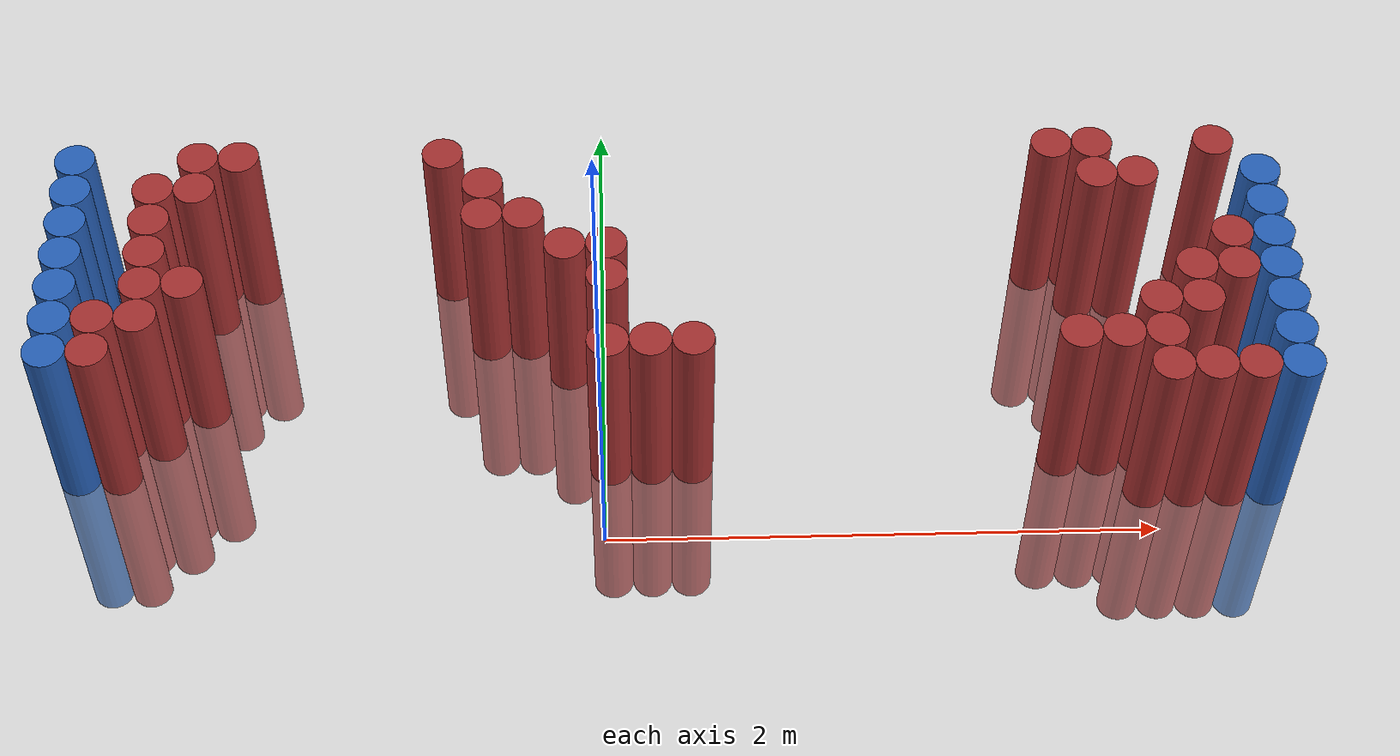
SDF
<sdf version="1.6">
 <world name="default">
  <model name="ground_plane">
   <static>1</static>
   <link name="link">
    <collision name="collision">
     <geometry><plane><normal>0 0 1</normal><size>100 100</size></plane></geometry>
     <surface><friction><ode><mu>100</mu><mu2>50</mu2></ode></friction></surface>
    </collision>
    <visual name="visual">
     <cast_shadows>0</cast_shadows>
     <geometry><plane><normal>0 0 1</normal><size>100 100</size></plane></geometry>
     <material>
      <script><uri>file://media/materials/scripts/gazebo.material</uri><name>Gazebo/Grey</name></script>
     </material>
    </visual>
   </link>
  </model>
  <model name="unit_cylinder_97">
   <static>1</static>
   <pose>-1.925000 0.325000 0.000000 0.000000 0.000000 0.000000</pose>
   <link name="link">
    <inertial>
     <mass>1</mass>
     <inertia><ixx>0.145833</ixx><ixy>0</ixy><ixz>0</ixz><iyy>0.145833</iyy><iyz>0</iyz><izz>0.125</izz></inertia>
    </inertial>
    <collision name="collision">
     <geometry><cylinder><radius>0.075000</radius><length>1.5</length></cylinder></geometry>
    </collision>
    <visual name="visual">
     <geometry><cylinder><radius>0.075000</radius><length>1.5</length></cylinder></geometry>
     <material>
      <ambient>0.152000 0.379000 0.720000 1</ambient>
      <diffuse>0.152000 0.379000 0.720000 1</diffuse>
     </material>
     <material>
      <script><name>Gazebo/Grey</name><uri>file://media/materials/scripts/gazebo.material</uri></script>
     </material>
    </visual>
   </link>
  </model>
  <model name="unit_cylinder_98">
   <static>1</static>
   <pose>-1.925000 0.475000 0.000000 0.000000 0.000000 0.000000</pose>
   <link name="link">
    <inertial>
     <mass>1</mass>
     <inertia><ixx>0.145833</ixx><ixy>0</ixy><ixz>0</ixz><iyy>0.145833</iyy><iyz>0</iyz><izz>0.125</izz></inertia>
    </inertial>
    <collision name="collision">
     <geometry><cylinder><radius>0.075000</radius><length>1.5</length></cylinder></geometry>
    </collision>
    <visual name="visual">
     <geometry><cylinder><radius>0.075000</radius><length>1.5</length></cylinder></geometry>
     <material>
      <ambient>0.152000 0.379000 0.720000 1</ambient>
      <diffuse>0.152000 0.379000 0.720000 1</diffuse>
     </material>
     <material>
      <script><name>Gazebo/Grey</name><uri>file://media/materials/scripts/gazebo.material</uri></script>
     </material>
    </visual>
   </link>
  </model>
  <model name="unit_cylinder_99">
   <static>1</static>
   <pose>-1.925000 0.625000 0.000000 0.000000 0.000000 0.000000</pose>
   <link name="link">
    <inertial>
     <mass>1</mass>
     <inertia><ixx>0.145833</ixx><ixy>0</ixy><ixz>0</ixz><iyy>0.145833</iyy><iyz>0</iyz><izz>0.125</izz></inertia>
    </inertial>
    <collision name="collision">
     <geometry><cylinder><radius>0.075000</radius><length>1.5</length></cylinder></geometry>
    </collision>
    <visual name="visual">
     <geometry><cylinder><radius>0.075000</radius><length>1.5</length></cylinder></geometry>
     <material>
      <ambient>0.152000 0.379000 0.720000 1</ambient>
      <diffuse>0.152000 0.379000 0.720000 1</diffuse>
     </material>
     <material>
      <script><name>Gazebo/Grey</name><uri>file://media/materials/scripts/gazebo.material</uri></script>
     </material>
    </visual>
   </link>
  </model>
  <model name="unit_cylinder_100">
   <static>1</static>
   <pose>-1.925000 0.775000 0.000000 0.000000 0.000000 0.000000</pose>
   <link name="link">
    <inertial>
     <mass>1</mass>
     <inertia><ixx>0.145833</ixx><ixy>0</ixy><ixz>0</ixz><iyy>0.145833</iyy><iyz>0</iyz><izz>0.125</izz></inertia>
    </inertial>
    <collision name="collision">
     <geometry><cylinder><radius>0.075000</radius><length>1.5</length></cylinder></geometry>
    </collision>
    <visual name="visual">
     <geometry><cylinder><radius>0.075000</radius><length>1.5</length></cylinder></geometry>
     <material>
      <ambient>0.152000 0.379000 0.720000 1</ambient>
      <diffuse>0.152000 0.379000 0.720000 1</diffuse>
     </material>
     <material>
      <script><name>Gazebo/Grey</name><uri>file://media/materials/scripts/gazebo.material</uri></script>
     </material>
    </visual>
   </link>
  </model>
  <model name="unit_cylinder_101">
   <static>1</static>
   <pose>-1.925000 0.925000 0.000000 0.000000 0.000000 0.000000</pose>
   <link name="link">
    <inertial>
     <mass>1</mass>
     <inertia><ixx>0.145833</ixx><ixy>0</ixy><ixz>0</ixz><iyy>0.145833</iyy><iyz>0</iyz><izz>0.125</izz></inertia>
    </inertial>
    <collision name="collision">
     <geometry><cylinder><radius>0.075000</radius><length>1.5</length></cylinder></geometry>
    </collision>
    <visual name="visual">
     <geometry><cylinder><radius>0.075000</radius><length>1.5</length></cylinder></geometry>
     <material>
      <ambient>0.152000 0.379000 0.720000 1</ambient>
      <diffuse>0.152000 0.379000 0.720000 1</diffuse>
     </material>
     <material>
      <script><name>Gazebo/Grey</name><uri>file://media/materials/scripts/gazebo.material</uri></script>
     </material>
    </visual>
   </link>
  </model>
  <model name="unit_cylinder_102">
   <static>1</static>
   <pose>-1.925000 1.075000 0.000000 0.000000 0.000000 0.000000</pose>
   <link name="link">
    <inertial>
     <mass>1</mass>
     <inertia><ixx>0.145833</ixx><ixy>0</ixy><ixz>0</ixz><iyy>0.145833</iyy><iyz>0</iyz><izz>0.125</izz></inertia>
    </inertial>
    <collision name="collision">
     <geometry><cylinder><radius>0.075000</radius><length>1.5</length></cylinder></geometry>
    </collision>
    <visual name="visual">
     <geometry><cylinder><radius>0.075000</radius><length>1.5</length></cylinder></geometry>
     <material>
      <ambient>0.152000 0.379000 0.720000 1</ambient>
      <diffuse>0.152000 0.379000 0.720000 1</diffuse>
     </material>
     <material>
      <script><name>Gazebo/Grey</name><uri>file://media/materials/scripts/gazebo.material</uri></script>
     </material>
    </visual>
   </link>
  </model>
  <model name="unit_cylinder_103">
   <static>1</static>
   <pose>-1.925000 1.225000 0.000000 0.000000 0.000000 0.000000</pose>
   <link name="link">
    <inertial>
     <mass>1</mass>
     <inertia><ixx>0.145833</ixx><ixy>0</ixy><ixz>0</ixz><iyy>0.145833</iyy><iyz>0</iyz><izz>0.125</izz></inertia>
    </inertial>
    <collision name="collision">
     <geometry><cylinder><radius>0.075000</radius><length>1.5</length></cylinder></geometry>
    </collision>
    <visual name="visual">
     <geometry><cylinder><radius>0.075000</radius><length>1.5</length></cylinder></geometry>
     <material>
      <ambient>0.152000 0.379000 0.720000 1</ambient>
      <diffuse>0.152000 0.379000 0.720000 1</diffuse>
     </material>
     <material>
      <script><name>Gazebo/Grey</name><uri>file://media/materials/scripts/gazebo.material</uri></script>
     </material>
    </visual>
   </link>
  </model>
  <model name="unit_cylinder_126">
   <static>1</static>
   <pose>-1.775000 0.325000 0.000000 0.000000 0.000000 0.000000</pose>
   <link name="link">
    <inertial>
     <mass>1</mass>
     <inertia><ixx>0.145833</ixx><ixy>0</ixy><ixz>0</ixz><iyy>0.145833</iyy><iyz>0</iyz><izz>0.125</izz></inertia>
    </inertial>
    <collision name="collision">
     <geometry><cylinder><radius>0.075000</radius><length>1.5</length></cylinder></geometry>
    </collision>
    <visual name="visual">
     <geometry><cylinder><radius>0.075000</radius><length>1.5</length></cylinder></geometry>
     <material>
      <ambient>0.648000 0.192000 0.192000 1</ambient>
      <diffuse>0.648000 0.192000 0.192000 1</diffuse>
     </material>
     <material>
      <script><name>Gazebo/Grey</name><uri>file://media/materials/scripts/gazebo.material</uri></script>
     </material>
    </visual>
   </link>
  </model>
  <model name="unit_cylinder_127">
   <static>1</static>
   <pose>-1.775000 0.475000 0.000000 0.000000 0.000000 0.000000</pose>
   <link name="link">
    <inertial>
     <mass>1</mass>
     <inertia><ixx>0.145833</ixx><ixy>0</ixy><ixz>0</ixz><iyy>0.145833</iyy><iyz>0</iyz><izz>0.125</izz></inertia>
    </inertial>
    <collision name="collision">
     <geometry><cylinder><radius>0.075000</radius><length>1.5</length></cylinder></geometry>
    </collision>
    <visual name="visual">
     <geometry><cylinder><radius>0.075000</radius><length>1.5</length></cylinder></geometry>
     <material>
      <ambient>0.648000 0.192000 0.192000 1</ambient>
      <diffuse>0.648000 0.192000 0.192000 1</diffuse>
     </material>
     <material>
      <script><name>Gazebo/Grey</name><uri>file://media/materials/scripts/gazebo.material</uri></script>
     </material>
    </visual>
   </link>
  </model>
  <model name="unit_cylinder_138">
   <static>1</static>
   <pose>-1.625000 0.475000 0.000000 0.000000 0.000000 0.000000</pose>
   <link name="link">
    <inertial>
     <mass>1</mass>
     <inertia><ixx>0.145833</ixx><ixy>0</ixy><ixz>0</ixz><iyy>0.145833</iyy><iyz>0</iyz><izz>0.125</izz></inertia>
    </inertial>
    <collision name="collision">
     <geometry><cylinder><radius>0.075000</radius><length>1.5</length></cylinder></geometry>
    </collision>
    <visual name="visual">
     <geometry><cylinder><radius>0.075000</radius><length>1.5</length></cylinder></geometry>
     <material>
      <ambient>0.648000 0.192000 0.192000 1</ambient>
      <diffuse>0.648000 0.192000 0.192000 1</diffuse>
     </material>
     <material>
      <script><name>Gazebo/Grey</name><uri>file://media/materials/scripts/gazebo.material</uri></script>
     </material>
    </visual>
   </link>
  </model>
  <model name="unit_cylinder_139">
   <static>1</static>
   <pose>-1.625000 0.625000 0.000000 0.000000 0.000000 0.000000</pose>
   <link name="link">
    <inertial>
     <mass>1</mass>
     <inertia><ixx>0.145833</ixx><ixy>0</ixy><ixz>0</ixz><iyy>0.145833</iyy><iyz>0</iyz><izz>0.125</izz></inertia>
    </inertial>
    <collision name="collision">
     <geometry><cylinder><radius>0.075000</radius><length>1.5</length></cylinder></geometry>
    </collision>
    <visual name="visual">
     <geometry><cylinder><radius>0.075000</radius><length>1.5</length></cylinder></geometry>
     <material>
      <ambient>0.648000 0.192000 0.192000 1</ambient>
      <diffuse>0.648000 0.192000 0.192000 1</diffuse>
     </material>
     <material>
      <script><name>Gazebo/Grey</name><uri>file://media/materials/scripts/gazebo.material</uri></script>
     </material>
    </visual>
   </link>
  </model>
  <model name="unit_cylinder_140">
   <static>1</static>
   <pose>-1.625000 0.775000 0.000000 0.000000 0.000000 0.000000</pose>
   <link name="link">
    <inertial>
     <mass>1</mass>
     <inertia><ixx>0.145833</ixx><ixy>0</ixy><ixz>0</ixz><iyy>0.145833</iyy><iyz>0</iyz><izz>0.125</izz></inertia>
    </inertial>
    <collision name="collision">
     <geometry><cylinder><radius>0.075000</radius><length>1.5</length></cylinder></geometry>
    </collision>
    <visual name="visual">
     <geometry><cylinder><radius>0.075000</radius><length>1.5</length></cylinder></geometry>
     <material>
      <ambient>0.648000 0.192000 0.192000 1</ambient>
      <diffuse>0.648000 0.192000 0.192000 1</diffuse>
     </material>
     <material>
      <script><name>Gazebo/Grey</name><uri>file://media/materials/scripts/gazebo.material</uri></script>
     </material>
    </visual>
   </link>
  </model>
  <model name="unit_cylinder_141">
   <static>1</static>
   <pose>-1.625000 0.925000 0.000000 0.000000 0.000000 0.000000</pose>
   <link name="link">
    <inertial>
     <mass>1</mass>
     <inertia><ixx>0.145833</ixx><ixy>0</ixy><ixz>0</ixz><iyy>0.145833</iyy><iyz>0</iyz><izz>0.125</izz></inertia>
    </inertial>
    <collision name="collision">
     <geometry><cylinder><radius>0.075000</radius><length>1.5</length></cylinder></geometry>
    </collision>
    <visual name="visual">
     <geometry><cylinder><radius>0.075000</radius><length>1.5</length></cylinder></geometry>
     <material>
      <ambient>0.648000 0.192000 0.192000 1</ambient>
      <diffuse>0.648000 0.192000 0.192000 1</diffuse>
     </material>
     <material>
      <script><name>Gazebo/Grey</name><uri>file://media/materials/scripts/gazebo.material</uri></script>
     </material>
    </visual>
   </link>
  </model>
  <model name="unit_cylinder_142">
   <static>1</static>
   <pose>-1.625000 1.075000 0.000000 0.000000 0.000000 0.000000</pose>
   <link name="link">
    <inertial>
     <mass>1</mass>
     <inertia><ixx>0.145833</ixx><ixy>0</ixy><ixz>0</ixz><iyy>0.145833</iyy><iyz>0</iyz><izz>0.125</izz></inertia>
    </inertial>
    <collision name="collision">
     <geometry><cylinder><radius>0.075000</radius><length>1.5</length></cylinder></geometry>
    </collision>
    <visual name="visual">
     <geometry><cylinder><radius>0.075000</radius><length>1.5</length></cylinder></geometry>
     <material>
      <ambient>0.648000 0.192000 0.192000 1</ambient>
      <diffuse>0.648000 0.192000 0.192000 1</diffuse>
     </material>
     <material>
      <script><name>Gazebo/Grey</name><uri>file://media/materials/scripts/gazebo.material</uri></script>
     </material>
    </visual>
   </link>
  </model>
  <model name="unit_cylinder_147">
   <static>1</static>
   <pose>-1.475000 0.625000 0.000000 0.000000 0.000000 0.000000</pose>
   <link name="link">
    <inertial>
     <mass>1</mass>
     <inertia><ixx>0.145833</ixx><ixy>0</ixy><ixz>0</ixz><iyy>0.145833</iyy><iyz>0</iyz><izz>0.125</izz></inertia>
    </inertial>
    <collision name="collision">
     <geometry><cylinder><radius>0.075000</radius><length>1.5</length></cylinder></geometry>
    </collision>
    <visual name="visual">
     <geometry><cylinder><radius>0.075000</radius><length>1.5</length></cylinder></geometry>
     <material>
      <ambient>0.648000 0.192000 0.192000 1</ambient>
      <diffuse>0.648000 0.192000 0.192000 1</diffuse>
     </material>
     <material>
      <script><name>Gazebo/Grey</name><uri>file://media/materials/scripts/gazebo.material</uri></script>
     </material>
    </visual>
   </link>
  </model>
  <model name="unit_cylinder_148">
   <static>1</static>
   <pose>-1.475000 1.075000 0.000000 0.000000 0.000000 0.000000</pose>
   <link name="link">
    <inertial>
     <mass>1</mass>
     <inertia><ixx>0.145833</ixx><ixy>0</ixy><ixz>0</ixz><iyy>0.145833</iyy><iyz>0</iyz><izz>0.125</izz></inertia>
    </inertial>
    <collision name="collision">
     <geometry><cylinder><radius>0.075000</radius><length>1.5</length></cylinder></geometry>
    </collision>
    <visual name="visual">
     <geometry><cylinder><radius>0.075000</radius><length>1.5</length></cylinder></geometry>
     <material>
      <ambient>0.648000 0.192000 0.192000 1</ambient>
      <diffuse>0.648000 0.192000 0.192000 1</diffuse>
     </material>
     <material>
      <script><name>Gazebo/Grey</name><uri>file://media/materials/scripts/gazebo.material</uri></script>
     </material>
    </visual>
   </link>
  </model>
  <model name="unit_cylinder_149">
   <static>1</static>
   <pose>-1.475000 1.225000 0.000000 0.000000 0.000000 0.000000</pose>
   <link name="link">
    <inertial>
     <mass>1</mass>
     <inertia><ixx>0.145833</ixx><ixy>0</ixy><ixz>0</ixz><iyy>0.145833</iyy><iyz>0</iyz><izz>0.125</izz></inertia>
    </inertial>
    <collision name="collision">
     <geometry><cylinder><radius>0.075000</radius><length>1.5</length></cylinder></geometry>
    </collision>
    <visual name="visual">
     <geometry><cylinder><radius>0.075000</radius><length>1.5</length></cylinder></geometry>
     <material>
      <ambient>0.648000 0.192000 0.192000 1</ambient>
      <diffuse>0.648000 0.192000 0.192000 1</diffuse>
     </material>
     <material>
      <script><name>Gazebo/Grey</name><uri>file://media/materials/scripts/gazebo.material</uri></script>
     </material>
    </visual>
   </link>
  </model>
  <model name="unit_cylinder_153">
   <static>1</static>
   <pose>-1.325000 1.225000 0.000000 0.000000 0.000000 0.000000</pose>
   <link name="link">
    <inertial>
     <mass>1</mass>
     <inertia><ixx>0.145833</ixx><ixy>0</ixy><ixz>0</ixz><iyy>0.145833</iyy><iyz>0</iyz><izz>0.125</izz></inertia>
    </inertial>
    <collision name="collision">
     <geometry><cylinder><radius>0.075000</radius><length>1.5</length></cylinder></geometry>
    </collision>
    <visual name="visual">
     <geometry><cylinder><radius>0.075000</radius><length>1.5</length></cylinder></geometry>
     <material>
      <ambient>0.648000 0.192000 0.192000 1</ambient>
      <diffuse>0.648000 0.192000 0.192000 1</diffuse>
     </material>
     <material>
      <script><name>Gazebo/Grey</name><uri>file://media/materials/scripts/gazebo.material</uri></script>
     </material>
    </visual>
   </link>
  </model>
  <model name="unit_cylinder_178">
   <static>1</static>
   <pose>-0.575000 1.225000 0.000000 0.000000 0.000000 0.000000</pose>
   <link name="link">
    <inertial>
     <mass>1</mass>
     <inertia><ixx>0.145833</ixx><ixy>0</ixy><ixz>0</ixz><iyy>0.145833</iyy><iyz>0</iyz><izz>0.125</izz></inertia>
    </inertial>
    <collision name="collision">
     <geometry><cylinder><radius>0.075000</radius><length>1.5</length></cylinder></geometry>
    </collision>
    <visual name="visual">
     <geometry><cylinder><radius>0.075000</radius><length>1.5</length></cylinder></geometry>
     <material>
      <ambient>0.648000 0.192000 0.192000 1</ambient>
      <diffuse>0.648000 0.192000 0.192000 1</diffuse>
     </material>
     <material>
      <script><name>Gazebo/Grey</name><uri>file://media/materials/scripts/gazebo.material</uri></script>
     </material>
    </visual>
   </link>
  </model>
  <model name="unit_cylinder_187">
   <static>1</static>
   <pose>-0.425000 0.925000 0.000000 0.000000 0.000000 0.000000</pose>
   <link name="link">
    <inertial>
     <mass>1</mass>
     <inertia><ixx>0.145833</ixx><ixy>0</ixy><ixz>0</ixz><iyy>0.145833</iyy><iyz>0</iyz><izz>0.125</izz></inertia>
    </inertial>
    <collision name="collision">
     <geometry><cylinder><radius>0.075000</radius><length>1.5</length></cylinder></geometry>
    </collision>
    <visual name="visual">
     <geometry><cylinder><radius>0.075000</radius><length>1.5</length></cylinder></geometry>
     <material>
      <ambient>0.648000 0.192000 0.192000 1</ambient>
      <diffuse>0.648000 0.192000 0.192000 1</diffuse>
     </material>
     <material>
      <script><name>Gazebo/Grey</name><uri>file://media/materials/scripts/gazebo.material</uri></script>
     </material>
    </visual>
   </link>
  </model>
  <model name="unit_cylinder_188">
   <static>1</static>
   <pose>-0.425000 1.075000 0.000000 0.000000 0.000000 0.000000</pose>
   <link name="link">
    <inertial>
     <mass>1</mass>
     <inertia><ixx>0.145833</ixx><ixy>0</ixy><ixz>0</ixz><iyy>0.145833</iyy><iyz>0</iyz><izz>0.125</izz></inertia>
    </inertial>
    <collision name="collision">
     <geometry><cylinder><radius>0.075000</radius><length>1.5</length></cylinder></geometry>
    </collision>
    <visual name="visual">
     <geometry><cylinder><radius>0.075000</radius><length>1.5</length></cylinder></geometry>
     <material>
      <ambient>0.648000 0.192000 0.192000 1</ambient>
      <diffuse>0.648000 0.192000 0.192000 1</diffuse>
     </material>
     <material>
      <script><name>Gazebo/Grey</name><uri>file://media/materials/scripts/gazebo.material</uri></script>
     </material>
    </visual>
   </link>
  </model>
  <model name="unit_cylinder_198">
   <static>1</static>
   <pose>-0.275000 0.925000 0.000000 0.000000 0.000000 0.000000</pose>
   <link name="link">
    <inertial>
     <mass>1</mass>
     <inertia><ixx>0.145833</ixx><ixy>0</ixy><ixz>0</ixz><iyy>0.145833</iyy><iyz>0</iyz><izz>0.125</izz></inertia>
    </inertial>
    <collision name="collision">
     <geometry><cylinder><radius>0.075000</radius><length>1.5</length></cylinder></geometry>
    </collision>
    <visual name="visual">
     <geometry><cylinder><radius>0.075000</radius><length>1.5</length></cylinder></geometry>
     <material>
      <ambient>0.648000 0.192000 0.192000 1</ambient>
      <diffuse>0.648000 0.192000 0.192000 1</diffuse>
     </material>
     <material>
      <script><name>Gazebo/Grey</name><uri>file://media/materials/scripts/gazebo.material</uri></script>
     </material>
    </visual>
   </link>
  </model>
  <model name="unit_cylinder_203">
   <static>1</static>
   <pose>-0.125000 0.775000 0.000000 0.000000 0.000000 0.000000</pose>
   <link name="link">
    <inertial>
     <mass>1</mass>
     <inertia><ixx>0.145833</ixx><ixy>0</ixy><ixz>0</ixz><iyy>0.145833</iyy><iyz>0</iyz><izz>0.125</izz></inertia>
    </inertial>
    <collision name="collision">
     <geometry><cylinder><radius>0.075000</radius><length>1.5</length></cylinder></geometry>
    </collision>
    <visual name="visual">
     <geometry><cylinder><radius>0.075000</radius><length>1.5</length></cylinder></geometry>
     <material>
      <ambient>0.648000 0.192000 0.192000 1</ambient>
      <diffuse>0.648000 0.192000 0.192000 1</diffuse>
     </material>
     <material>
      <script><name>Gazebo/Grey</name><uri>file://media/materials/scripts/gazebo.material</uri></script>
     </material>
    </visual>
   </link>
  </model>
  <model name="unit_cylinder_205">
   <static>1</static>
   <pose>0.025000 0.325000 0.000000 0.000000 0.000000 0.000000</pose>
   <link name="link">
    <inertial>
     <mass>1</mass>
     <inertia><ixx>0.145833</ixx><ixy>0</ixy><ixz>0</ixz><iyy>0.145833</iyy><iyz>0</iyz><izz>0.125</izz></inertia>
    </inertial>
    <collision name="collision">
     <geometry><cylinder><radius>0.075000</radius><length>1.5</length></cylinder></geometry>
    </collision>
    <visual name="visual">
     <geometry><cylinder><radius>0.075000</radius><length>1.5</length></cylinder></geometry>
     <material>
      <ambient>0.648000 0.192000 0.192000 1</ambient>
      <diffuse>0.648000 0.192000 0.192000 1</diffuse>
     </material>
     <material>
      <script><name>Gazebo/Grey</name><uri>file://media/materials/scripts/gazebo.material</uri></script>
     </material>
    </visual>
   </link>
  </model>
  <model name="unit_cylinder_206">
   <static>1</static>
   <pose>0.025000 0.625000 0.000000 0.000000 0.000000 0.000000</pose>
   <link name="link">
    <inertial>
     <mass>1</mass>
     <inertia><ixx>0.145833</ixx><ixy>0</ixy><ixz>0</ixz><iyy>0.145833</iyy><iyz>0</iyz><izz>0.125</izz></inertia>
    </inertial>
    <collision name="collision">
     <geometry><cylinder><radius>0.075000</radius><length>1.5</length></cylinder></geometry>
    </collision>
    <visual name="visual">
     <geometry><cylinder><radius>0.075000</radius><length>1.5</length></cylinder></geometry>
     <material>
      <ambient>0.648000 0.192000 0.192000 1</ambient>
      <diffuse>0.648000 0.192000 0.192000 1</diffuse>
     </material>
     <material>
      <script><name>Gazebo/Grey</name><uri>file://media/materials/scripts/gazebo.material</uri></script>
     </material>
    </visual>
   </link>
  </model>
  <model name="unit_cylinder_207">
   <static>1</static>
   <pose>0.025000 0.775000 0.000000 0.000000 0.000000 0.000000</pose>
   <link name="link">
    <inertial>
     <mass>1</mass>
     <inertia><ixx>0.145833</ixx><ixy>0</ixy><ixz>0</ixz><iyy>0.145833</iyy><iyz>0</iyz><izz>0.125</izz></inertia>
    </inertial>
    <collision name="collision">
     <geometry><cylinder><radius>0.075000</radius><length>1.5</length></cylinder></geometry>
    </collision>
    <visual name="visual">
     <geometry><cylinder><radius>0.075000</radius><length>1.5</length></cylinder></geometry>
     <material>
      <ambient>0.648000 0.192000 0.192000 1</ambient>
      <diffuse>0.648000 0.192000 0.192000 1</diffuse>
     </material>
     <material>
      <script><name>Gazebo/Grey</name><uri>file://media/materials/scripts/gazebo.material</uri></script>
     </material>
    </visual>
   </link>
  </model>
  <model name="unit_cylinder_211">
   <static>1</static>
   <pose>0.175000 0.325000 0.000000 0.000000 0.000000 0.000000</pose>
   <link name="link">
    <inertial>
     <mass>1</mass>
     <inertia><ixx>0.145833</ixx><ixy>0</ixy><ixz>0</ixz><iyy>0.145833</iyy><iyz>0</iyz><izz>0.125</izz></inertia>
    </inertial>
    <collision name="collision">
     <geometry><cylinder><radius>0.075000</radius><length>1.5</length></cylinder></geometry>
    </collision>
    <visual name="visual">
     <geometry><cylinder><radius>0.075000</radius><length>1.5</length></cylinder></geometry>
     <material>
      <ambient>0.648000 0.192000 0.192000 1</ambient>
      <diffuse>0.648000 0.192000 0.192000 1</diffuse>
     </material>
     <material>
      <script><name>Gazebo/Grey</name><uri>file://media/materials/scripts/gazebo.material</uri></script>
     </material>
    </visual>
   </link>
  </model>
  <model name="unit_cylinder_215">
   <static>1</static>
   <pose>0.325000 0.325000 0.000000 0.000000 0.000000 0.000000</pose>
   <link name="link">
    <inertial>
     <mass>1</mass>
     <inertia><ixx>0.145833</ixx><ixy>0</ixy><ixz>0</ixz><iyy>0.145833</iyy><iyz>0</iyz><izz>0.125</izz></inertia>
    </inertial>
    <collision name="collision">
     <geometry><cylinder><radius>0.075000</radius><length>1.5</length></cylinder></geometry>
    </collision>
    <visual name="visual">
     <geometry><cylinder><radius>0.075000</radius><length>1.5</length></cylinder></geometry>
     <material>
      <ambient>0.648000 0.192000 0.192000 1</ambient>
      <diffuse>0.648000 0.192000 0.192000 1</diffuse>
     </material>
     <material>
      <script><name>Gazebo/Grey</name><uri>file://media/materials/scripts/gazebo.material</uri></script>
     </material>
    </visual>
   </link>
  </model>
  <model name="unit_cylinder_225">
   <static>1</static>
   <pose>1.675000 0.325000 0.000000 0.000000 0.000000 0.000000</pose>
   <link name="link">
    <inertial>
     <mass>1</mass>
     <inertia><ixx>0.145833</ixx><ixy>0</ixy><ixz>0</ixz><iyy>0.145833</iyy><iyz>0</iyz><izz>0.125</izz></inertia>
    </inertial>
    <collision name="collision">
     <geometry><cylinder><radius>0.075000</radius><length>1.5</length></cylinder></geometry>
    </collision>
    <visual name="visual">
     <geometry><cylinder><radius>0.075000</radius><length>1.5</length></cylinder></geometry>
     <material>
      <ambient>0.648000 0.192000 0.192000 1</ambient>
      <diffuse>0.648000 0.192000 0.192000 1</diffuse>
     </material>
     <material>
      <script><name>Gazebo/Grey</name><uri>file://media/materials/scripts/gazebo.material</uri></script>
     </material>
    </visual>
   </link>
  </model>
  <model name="unit_cylinder_226">
   <static>1</static>
   <pose>1.675000 1.225000 0.000000 0.000000 0.000000 0.000000</pose>
   <link name="link">
    <inertial>
     <mass>1</mass>
     <inertia><ixx>0.145833</ixx><ixy>0</ixy><ixz>0</ixz><iyy>0.145833</iyy><iyz>0</iyz><izz>0.125</izz></inertia>
    </inertial>
    <collision name="collision">
     <geometry><cylinder><radius>0.075000</radius><length>1.5</length></cylinder></geometry>
    </collision>
    <visual name="visual">
     <geometry><cylinder><radius>0.075000</radius><length>1.5</length></cylinder></geometry>
     <material>
      <ambient>0.648000 0.192000 0.192000 1</ambient>
      <diffuse>0.648000 0.192000 0.192000 1</diffuse>
     </material>
     <material>
      <script><name>Gazebo/Grey</name><uri>file://media/materials/scripts/gazebo.material</uri></script>
     </material>
    </visual>
   </link>
  </model>
  <model name="unit_cylinder_232">
   <static>1</static>
   <pose>1.825000 0.325000 0.000000 0.000000 0.000000 0.000000</pose>
   <link name="link">
    <inertial>
     <mass>1</mass>
     <inertia><ixx>0.145833</ixx><ixy>0</ixy><ixz>0</ixz><iyy>0.145833</iyy><iyz>0</iyz><izz>0.125</izz></inertia>
    </inertial>
    <collision name="collision">
     <geometry><cylinder><radius>0.075000</radius><length>1.5</length></cylinder></geometry>
    </collision>
    <visual name="visual">
     <geometry><cylinder><radius>0.075000</radius><length>1.5</length></cylinder></geometry>
     <material>
      <ambient>0.648000 0.192000 0.192000 1</ambient>
      <diffuse>0.648000 0.192000 0.192000 1</diffuse>
     </material>
     <material>
      <script><name>Gazebo/Grey</name><uri>file://media/materials/scripts/gazebo.material</uri></script>
     </material>
    </visual>
   </link>
  </model>
  <model name="unit_cylinder_233">
   <static>1</static>
   <pose>1.825000 1.075000 0.000000 0.000000 0.000000 0.000000</pose>
   <link name="link">
    <inertial>
     <mass>1</mass>
     <inertia><ixx>0.145833</ixx><ixy>0</ixy><ixz>0</ixz><iyy>0.145833</iyy><iyz>0</iyz><izz>0.125</izz></inertia>
    </inertial>
    <collision name="collision">
     <geometry><cylinder><radius>0.075000</radius><length>1.5</length></cylinder></geometry>
    </collision>
    <visual name="visual">
     <geometry><cylinder><radius>0.075000</radius><length>1.5</length></cylinder></geometry>
     <material>
      <ambient>0.648000 0.192000 0.192000 1</ambient>
      <diffuse>0.648000 0.192000 0.192000 1</diffuse>
     </material>
     <material>
      <script><name>Gazebo/Grey</name><uri>file://media/materials/scripts/gazebo.material</uri></script>
     </material>
    </visual>
   </link>
  </model>
  <model name="unit_cylinder_234">
   <static>1</static>
   <pose>1.825000 1.225000 0.000000 0.000000 0.000000 0.000000</pose>
   <link name="link">
    <inertial>
     <mass>1</mass>
     <inertia><ixx>0.145833</ixx><ixy>0</ixy><ixz>0</ixz><iyy>0.145833</iyy><iyz>0</iyz><izz>0.125</izz></inertia>
    </inertial>
    <collision name="collision">
     <geometry><cylinder><radius>0.075000</radius><length>1.5</length></cylinder></geometry>
    </collision>
    <visual name="visual">
     <geometry><cylinder><radius>0.075000</radius><length>1.5</length></cylinder></geometry>
     <material>
      <ambient>0.648000 0.192000 0.192000 1</ambient>
      <diffuse>0.648000 0.192000 0.192000 1</diffuse>
     </material>
     <material>
      <script><name>Gazebo/Grey</name><uri>file://media/materials/scripts/gazebo.material</uri></script>
     </material>
    </visual>
   </link>
  </model>
  <model name="unit_cylinder_238">
   <static>1</static>
   <pose>1.975000 0.175000 0.000000 0.000000 0.000000 0.000000</pose>
   <link name="link">
    <inertial>
     <mass>1</mass>
     <inertia><ixx>0.145833</ixx><ixy>0</ixy><ixz>0</ixz><iyy>0.145833</iyy><iyz>0</iyz><izz>0.125</izz></inertia>
    </inertial>
    <collision name="collision">
     <geometry><cylinder><radius>0.075000</radius><length>1.5</length></cylinder></geometry>
    </collision>
    <visual name="visual">
     <geometry><cylinder><radius>0.075000</radius><length>1.5</length></cylinder></geometry>
     <material>
      <ambient>0.648000 0.192000 0.192000 1</ambient>
      <diffuse>0.648000 0.192000 0.192000 1</diffuse>
     </material>
     <material>
      <script><name>Gazebo/Grey</name><uri>file://media/materials/scripts/gazebo.material</uri></script>
     </material>
    </visual>
   </link>
  </model>
  <model name="unit_cylinder_239">
   <static>1</static>
   <pose>1.975000 0.325000 0.000000 0.000000 0.000000 0.000000</pose>
   <link name="link">
    <inertial>
     <mass>1</mass>
     <inertia><ixx>0.145833</ixx><ixy>0</ixy><ixz>0</ixz><iyy>0.145833</iyy><iyz>0</iyz><izz>0.125</izz></inertia>
    </inertial>
    <collision name="collision">
     <geometry><cylinder><radius>0.075000</radius><length>1.5</length></cylinder></geometry>
    </collision>
    <visual name="visual">
     <geometry><cylinder><radius>0.075000</radius><length>1.5</length></cylinder></geometry>
     <material>
      <ambient>0.648000 0.192000 0.192000 1</ambient>
      <diffuse>0.648000 0.192000 0.192000 1</diffuse>
     </material>
     <material>
      <script><name>Gazebo/Grey</name><uri>file://media/materials/scripts/gazebo.material</uri></script>
     </material>
    </visual>
   </link>
  </model>
  <model name="unit_cylinder_240">
   <static>1</static>
   <pose>1.975000 0.475000 0.000000 0.000000 0.000000 0.000000</pose>
   <link name="link">
    <inertial>
     <mass>1</mass>
     <inertia><ixx>0.145833</ixx><ixy>0</ixy><ixz>0</ixz><iyy>0.145833</iyy><iyz>0</iyz><izz>0.125</izz></inertia>
    </inertial>
    <collision name="collision">
     <geometry><cylinder><radius>0.075000</radius><length>1.5</length></cylinder></geometry>
    </collision>
    <visual name="visual">
     <geometry><cylinder><radius>0.075000</radius><length>1.5</length></cylinder></geometry>
     <material>
      <ambient>0.648000 0.192000 0.192000 1</ambient>
      <diffuse>0.648000 0.192000 0.192000 1</diffuse>
     </material>
     <material>
      <script><name>Gazebo/Grey</name><uri>file://media/materials/scripts/gazebo.material</uri></script>
     </material>
    </visual>
   </link>
  </model>
  <model name="unit_cylinder_241">
   <static>1</static>
   <pose>1.975000 1.075000 0.000000 0.000000 0.000000 0.000000</pose>
   <link name="link">
    <inertial>
     <mass>1</mass>
     <inertia><ixx>0.145833</ixx><ixy>0</ixy><ixz>0</ixz><iyy>0.145833</iyy><iyz>0</iyz><izz>0.125</izz></inertia>
    </inertial>
    <collision name="collision">
     <geometry><cylinder><radius>0.075000</radius><length>1.5</length></cylinder></geometry>
    </collision>
    <visual name="visual">
     <geometry><cylinder><radius>0.075000</radius><length>1.5</length></cylinder></geometry>
     <material>
      <ambient>0.648000 0.192000 0.192000 1</ambient>
      <diffuse>0.648000 0.192000 0.192000 1</diffuse>
     </material>
     <material>
      <script><name>Gazebo/Grey</name><uri>file://media/materials/scripts/gazebo.material</uri></script>
     </material>
    </visual>
   </link>
  </model>
  <model name="unit_cylinder_247">
   <static>1</static>
   <pose>2.125000 0.175000 0.000000 0.000000 0.000000 0.000000</pose>
   <link name="link">
    <inertial>
     <mass>1</mass>
     <inertia><ixx>0.145833</ixx><ixy>0</ixy><ixz>0</ixz><iyy>0.145833</iyy><iyz>0</iyz><izz>0.125</izz></inertia>
    </inertial>
    <collision name="collision">
     <geometry><cylinder><radius>0.075000</radius><length>1.5</length></cylinder></geometry>
    </collision>
    <visual name="visual">
     <geometry><cylinder><radius>0.075000</radius><length>1.5</length></cylinder></geometry>
     <material>
      <ambient>0.648000 0.192000 0.192000 1</ambient>
      <diffuse>0.648000 0.192000 0.192000 1</diffuse>
     </material>
     <material>
      <script><name>Gazebo/Grey</name><uri>file://media/materials/scripts/gazebo.material</uri></script>
     </material>
    </visual>
   </link>
  </model>
  <model name="unit_cylinder_248">
   <static>1</static>
   <pose>2.125000 0.475000 0.000000 0.000000 0.000000 0.000000</pose>
   <link name="link">
    <inertial>
     <mass>1</mass>
     <inertia><ixx>0.145833</ixx><ixy>0</ixy><ixz>0</ixz><iyy>0.145833</iyy><iyz>0</iyz><izz>0.125</izz></inertia>
    </inertial>
    <collision name="collision">
     <geometry><cylinder><radius>0.075000</radius><length>1.5</length></cylinder></geometry>
    </collision>
    <visual name="visual">
     <geometry><cylinder><radius>0.075000</radius><length>1.5</length></cylinder></geometry>
     <material>
      <ambient>0.648000 0.192000 0.192000 1</ambient>
      <diffuse>0.648000 0.192000 0.192000 1</diffuse>
     </material>
     <material>
      <script><name>Gazebo/Grey</name><uri>file://media/materials/scripts/gazebo.material</uri></script>
     </material>
    </visual>
   </link>
  </model>
  <model name="unit_cylinder_249">
   <static>1</static>
   <pose>2.125000 0.625000 0.000000 0.000000 0.000000 0.000000</pose>
   <link name="link">
    <inertial>
     <mass>1</mass>
     <inertia><ixx>0.145833</ixx><ixy>0</ixy><ixz>0</ixz><iyy>0.145833</iyy><iyz>0</iyz><izz>0.125</izz></inertia>
    </inertial>
    <collision name="collision">
     <geometry><cylinder><radius>0.075000</radius><length>1.5</length></cylinder></geometry>
    </collision>
    <visual name="visual">
     <geometry><cylinder><radius>0.075000</radius><length>1.5</length></cylinder></geometry>
     <material>
      <ambient>0.648000 0.192000 0.192000 1</ambient>
      <diffuse>0.648000 0.192000 0.192000 1</diffuse>
     </material>
     <material>
      <script><name>Gazebo/Grey</name><uri>file://media/materials/scripts/gazebo.material</uri></script>
     </material>
    </visual>
   </link>
  </model>
  <model name="unit_cylinder_261">
   <static>1</static>
   <pose>2.275000 0.175000 0.000000 0.000000 0.000000 0.000000</pose>
   <link name="link">
    <inertial>
     <mass>1</mass>
     <inertia><ixx>0.145833</ixx><ixy>0</ixy><ixz>0</ixz><iyy>0.145833</iyy><iyz>0</iyz><izz>0.125</izz></inertia>
    </inertial>
    <collision name="collision">
     <geometry><cylinder><radius>0.075000</radius><length>1.5</length></cylinder></geometry>
    </collision>
    <visual name="visual">
     <geometry><cylinder><radius>0.075000</radius><length>1.5</length></cylinder></geometry>
     <material>
      <ambient>0.648000 0.192000 0.192000 1</ambient>
      <diffuse>0.648000 0.192000 0.192000 1</diffuse>
     </material>
     <material>
      <script><name>Gazebo/Grey</name><uri>file://media/materials/scripts/gazebo.material</uri></script>
     </material>
    </visual>
   </link>
  </model>
  <model name="unit_cylinder_262">
   <static>1</static>
   <pose>2.275000 0.625000 0.000000 0.000000 0.000000 0.000000</pose>
   <link name="link">
    <inertial>
     <mass>1</mass>
     <inertia><ixx>0.145833</ixx><ixy>0</ixy><ixz>0</ixz><iyy>0.145833</iyy><iyz>0</iyz><izz>0.125</izz></inertia>
    </inertial>
    <collision name="collision">
     <geometry><cylinder><radius>0.075000</radius><length>1.5</length></cylinder></geometry>
    </collision>
    <visual name="visual">
     <geometry><cylinder><radius>0.075000</radius><length>1.5</length></cylinder></geometry>
     <material>
      <ambient>0.648000 0.192000 0.192000 1</ambient>
      <diffuse>0.648000 0.192000 0.192000 1</diffuse>
     </material>
     <material>
      <script><name>Gazebo/Grey</name><uri>file://media/materials/scripts/gazebo.material</uri></script>
     </material>
    </visual>
   </link>
  </model>
  <model name="unit_cylinder_263">
   <static>1</static>
   <pose>2.275000 0.775000 0.000000 0.000000 0.000000 0.000000</pose>
   <link name="link">
    <inertial>
     <mass>1</mass>
     <inertia><ixx>0.145833</ixx><ixy>0</ixy><ixz>0</ixz><iyy>0.145833</iyy><iyz>0</iyz><izz>0.125</izz></inertia>
    </inertial>
    <collision name="collision">
     <geometry><cylinder><radius>0.075000</radius><length>1.5</length></cylinder></geometry>
    </collision>
    <visual name="visual">
     <geometry><cylinder><radius>0.075000</radius><length>1.5</length></cylinder></geometry>
     <material>
      <ambient>0.648000 0.192000 0.192000 1</ambient>
      <diffuse>0.648000 0.192000 0.192000 1</diffuse>
     </material>
     <material>
      <script><name>Gazebo/Grey</name><uri>file://media/materials/scripts/gazebo.material</uri></script>
     </material>
    </visual>
   </link>
  </model>
  <model name="unit_cylinder_264">
   <static>1</static>
   <pose>2.275000 1.225000 0.000000 0.000000 0.000000 0.000000</pose>
   <link name="link">
    <inertial>
     <mass>1</mass>
     <inertia><ixx>0.145833</ixx><ixy>0</ixy><ixz>0</ixz><iyy>0.145833</iyy><iyz>0</iyz><izz>0.125</izz></inertia>
    </inertial>
    <collision name="collision">
     <geometry><cylinder><radius>0.075000</radius><length>1.5</length></cylinder></geometry>
    </collision>
    <visual name="visual">
     <geometry><cylinder><radius>0.075000</radius><length>1.5</length></cylinder></geometry>
     <material>
      <ambient>0.648000 0.192000 0.192000 1</ambient>
      <diffuse>0.648000 0.192000 0.192000 1</diffuse>
     </material>
     <material>
      <script><name>Gazebo/Grey</name><uri>file://media/materials/scripts/gazebo.material</uri></script>
     </material>
    </visual>
   </link>
  </model>
  <model name="unit_cylinder_274">
   <static>1</static>
   <pose>2.425000 0.175000 0.000000 0.000000 0.000000 0.000000</pose>
   <link name="link">
    <inertial>
     <mass>1</mass>
     <inertia><ixx>0.145833</ixx><ixy>0</ixy><ixz>0</ixz><iyy>0.145833</iyy><iyz>0</iyz><izz>0.125</izz></inertia>
    </inertial>
    <collision name="collision">
     <geometry><cylinder><radius>0.075000</radius><length>1.5</length></cylinder></geometry>
    </collision>
    <visual name="visual">
     <geometry><cylinder><radius>0.075000</radius><length>1.5</length></cylinder></geometry>
     <material>
      <ambient>0.152000 0.379000 0.720000 1</ambient>
      <diffuse>0.152000 0.379000 0.720000 1</diffuse>
     </material>
     <material>
      <script><name>Gazebo/Grey</name><uri>file://media/materials/scripts/gazebo.material</uri></script>
     </material>
    </visual>
   </link>
  </model>
  <model name="unit_cylinder_275">
   <static>1</static>
   <pose>2.425000 0.325000 0.000000 0.000000 0.000000 0.000000</pose>
   <link name="link">
    <inertial>
     <mass>1</mass>
     <inertia><ixx>0.145833</ixx><ixy>0</ixy><ixz>0</ixz><iyy>0.145833</iyy><iyz>0</iyz><izz>0.125</izz></inertia>
    </inertial>
    <collision name="collision">
     <geometry><cylinder><radius>0.075000</radius><length>1.5</length></cylinder></geometry>
    </collision>
    <visual name="visual">
     <geometry><cylinder><radius>0.075000</radius><length>1.5</length></cylinder></geometry>
     <material>
      <ambient>0.152000 0.379000 0.720000 1</ambient>
      <diffuse>0.152000 0.379000 0.720000 1</diffuse>
     </material>
     <material>
      <script><name>Gazebo/Grey</name><uri>file://media/materials/scripts/gazebo.material</uri></script>
     </material>
    </visual>
   </link>
  </model>
  <model name="unit_cylinder_276">
   <static>1</static>
   <pose>2.425000 0.475000 0.000000 0.000000 0.000000 0.000000</pose>
   <link name="link">
    <inertial>
     <mass>1</mass>
     <inertia><ixx>0.145833</ixx><ixy>0</ixy><ixz>0</ixz><iyy>0.145833</iyy><iyz>0</iyz><izz>0.125</izz></inertia>
    </inertial>
    <collision name="collision">
     <geometry><cylinder><radius>0.075000</radius><length>1.5</length></cylinder></geometry>
    </collision>
    <visual name="visual">
     <geometry><cylinder><radius>0.075000</radius><length>1.5</length></cylinder></geometry>
     <material>
      <ambient>0.152000 0.379000 0.720000 1</ambient>
      <diffuse>0.152000 0.379000 0.720000 1</diffuse>
     </material>
     <material>
      <script><name>Gazebo/Grey</name><uri>file://media/materials/scripts/gazebo.material</uri></script>
     </material>
    </visual>
   </link>
  </model>
  <model name="unit_cylinder_277">
   <static>1</static>
   <pose>2.425000 0.625000 0.000000 0.000000 0.000000 0.000000</pose>
   <link name="link">
    <inertial>
     <mass>1</mass>
     <inertia><ixx>0.145833</ixx><ixy>0</ixy><ixz>0</ixz><iyy>0.145833</iyy><iyz>0</iyz><izz>0.125</izz></inertia>
    </inertial>
    <collision name="collision">
     <geometry><cylinder><radius>0.075000</radius><length>1.5</length></cylinder></geometry>
    </collision>
    <visual name="visual">
     <geometry><cylinder><radius>0.075000</radius><length>1.5</length></cylinder></geometry>
     <material>
      <ambient>0.152000 0.379000 0.720000 1</ambient>
      <diffuse>0.152000 0.379000 0.720000 1</diffuse>
     </material>
     <material>
      <script><name>Gazebo/Grey</name><uri>file://media/materials/scripts/gazebo.material</uri></script>
     </material>
    </visual>
   </link>
  </model>
  <model name="unit_cylinder_278">
   <static>1</static>
   <pose>2.425000 0.775000 0.000000 0.000000 0.000000 0.000000</pose>
   <link name="link">
    <inertial>
     <mass>1</mass>
     <inertia><ixx>0.145833</ixx><ixy>0</ixy><ixz>0</ixz><iyy>0.145833</iyy><iyz>0</iyz><izz>0.125</izz></inertia>
    </inertial>
    <collision name="collision">
     <geometry><cylinder><radius>0.075000</radius><length>1.5</length></cylinder></geometry>
    </collision>
    <visual name="visual">
     <geometry><cylinder><radius>0.075000</radius><length>1.5</length></cylinder></geometry>
     <material>
      <ambient>0.152000 0.379000 0.720000 1</ambient>
      <diffuse>0.152000 0.379000 0.720000 1</diffuse>
     </material>
     <material>
      <script><name>Gazebo/Grey</name><uri>file://media/materials/scripts/gazebo.material</uri></script>
     </material>
    </visual>
   </link>
  </model>
  <model name="unit_cylinder_279">
   <static>1</static>
   <pose>2.425000 0.925000 0.000000 0.000000 0.000000 0.000000</pose>
   <link name="link">
    <inertial>
     <mass>1</mass>
     <inertia><ixx>0.145833</ixx><ixy>0</ixy><ixz>0</ixz><iyy>0.145833</iyy><iyz>0</iyz><izz>0.125</izz></inertia>
    </inertial>
    <collision name="collision">
     <geometry><cylinder><radius>0.075000</radius><length>1.5</length></cylinder></geometry>
    </collision>
    <visual name="visual">
     <geometry><cylinder><radius>0.075000</radius><length>1.5</length></cylinder></geometry>
     <material>
      <ambient>0.152000 0.379000 0.720000 1</ambient>
      <diffuse>0.152000 0.379000 0.720000 1</diffuse>
     </material>
     <material>
      <script><name>Gazebo/Grey</name><uri>file://media/materials/scripts/gazebo.material</uri></script>
     </material>
    </visual>
   </link>
  </model>
  <model name="unit_cylinder_280">
   <static>1</static>
   <pose>2.425000 1.075000 0.000000 0.000000 0.000000 0.000000</pose>
   <link name="link">
    <inertial>
     <mass>1</mass>
     <inertia><ixx>0.145833</ixx><ixy>0</ixy><ixz>0</ixz><iyy>0.145833</iyy><iyz>0</iyz><izz>0.125</izz></inertia>
    </inertial>
    <collision name="collision">
     <geometry><cylinder><radius>0.075000</radius><length>1.5</length></cylinder></geometry>
    </collision>
    <visual name="visual">
     <geometry><cylinder><radius>0.075000</radius><length>1.5</length></cylinder></geometry>
     <material>
      <ambient>0.152000 0.379000 0.720000 1</ambient>
      <diffuse>0.152000 0.379000 0.720000 1</diffuse>
     </material>
     <material>
      <script><name>Gazebo/Grey</name><uri>file://media/materials/scripts/gazebo.material</uri></script>
     </material>
    </visual>
   </link>
  </model>
 </world>
</sdf>
